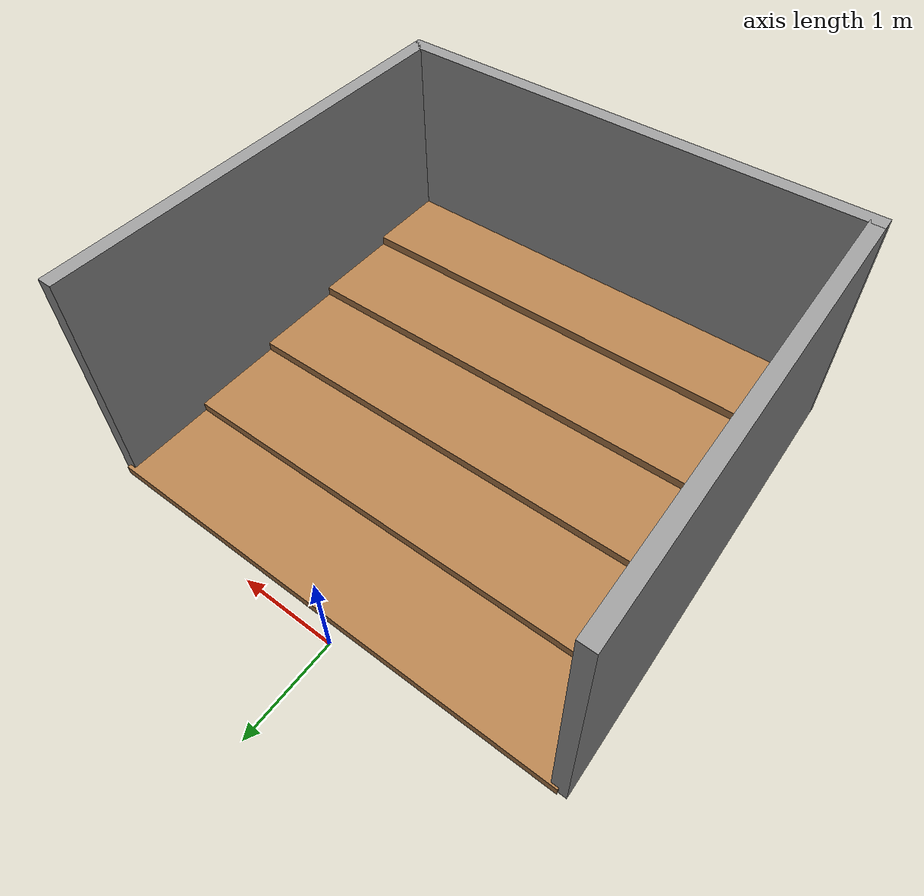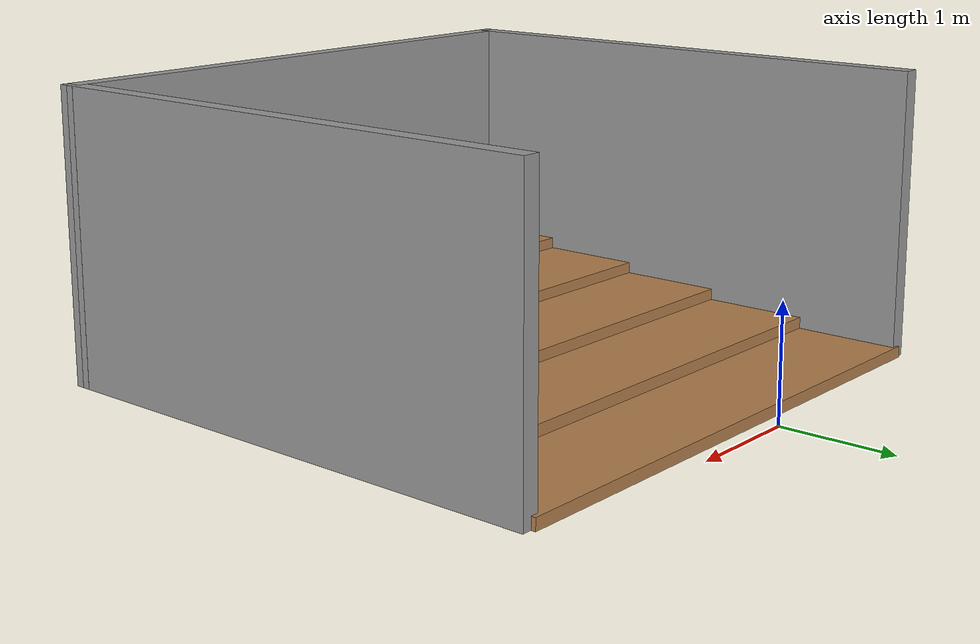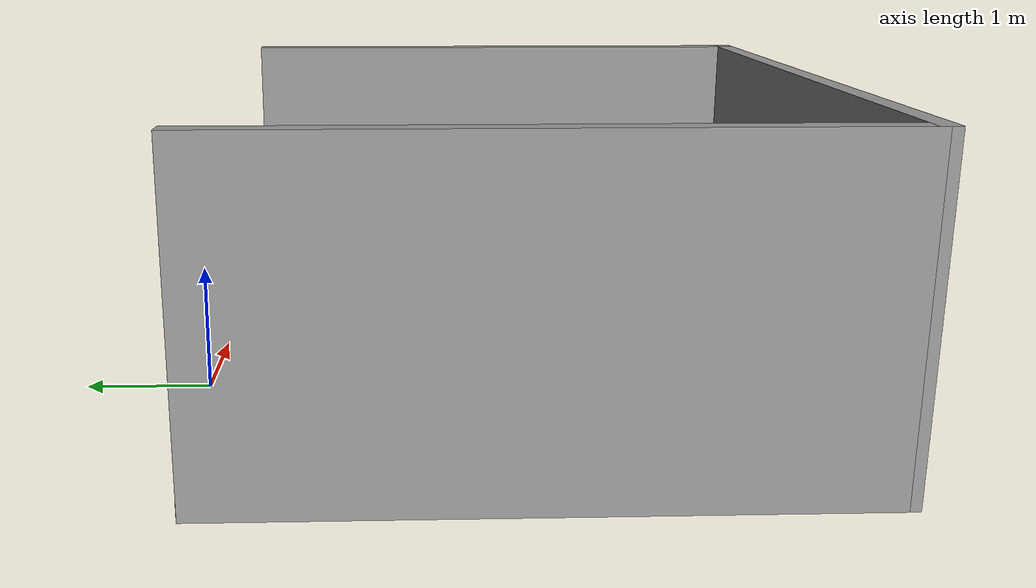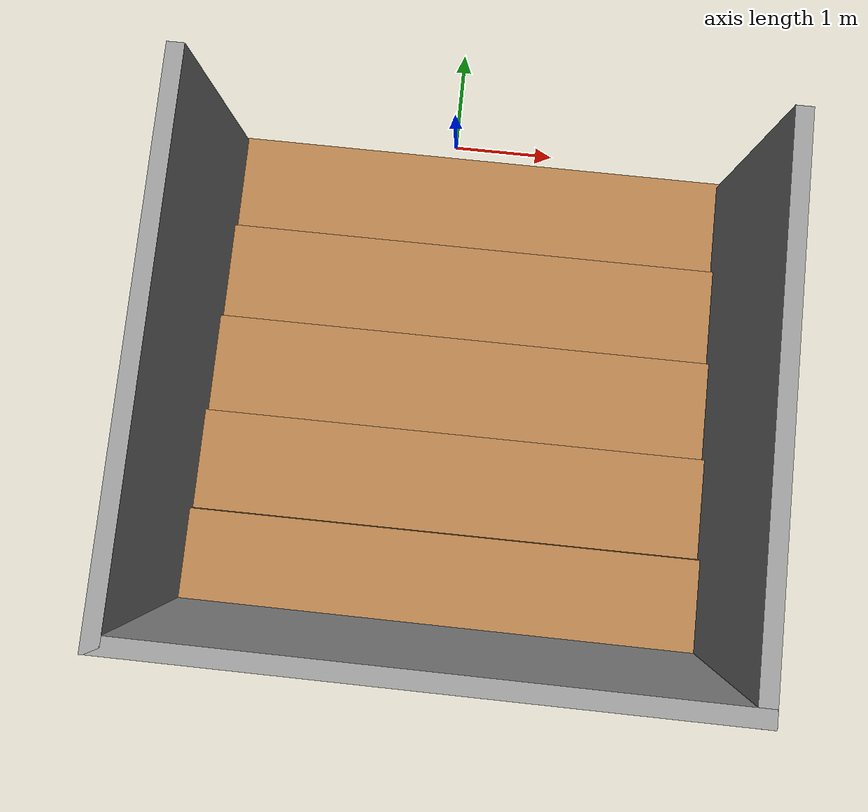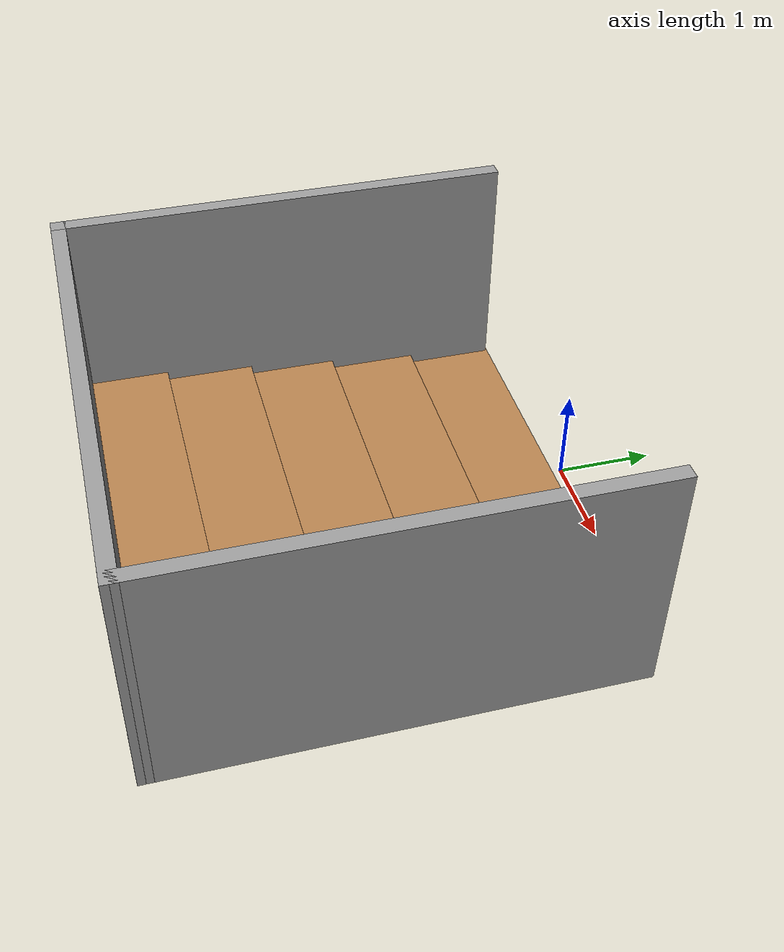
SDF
<?xml version='1.0'?>
<sdf version='1.7'>
  <model name='stairs'>
    <pose>0.288095 -2.46384 0 0 -0 0</pose>
    <link name='Stairs_4'>
      <visual name='Stairs_4_Visual_0'>
        <pose>-0.001731 1.85245 0.05 0 -0 0</pose>
        <geometry>
          <box>
            <size>5 0.945675 0.1</size>
          </box>
        </geometry>
        <material>
          <script>
            <uri>file://media/materials/scripts/gazebo.material</uri>
            <name>Gazebo/Wood</name>
          </script>
          <ambient>1 1 1 1</ambient>
        </material>
        <meta>
          <layer>0</layer>
        </meta>
      </visual>
      <collision name='Stairs_4_Collision_0'>
        <geometry>
          <box>
            <size>5 0.945675 0.1</size>
          </box>
        </geometry>
        <pose>-0.001731 1.85245 0.05 0 -0 0</pose>
      </collision>
      <visual name='Stairs_4_Visual_1'>
        <pose>-0.001731 0.906775 0.15 0 -0 0</pose>
        <geometry>
          <box>
            <size>5 0.945675 0.1</size>
          </box>
        </geometry>
        <material>
          <script>
            <uri>file://media/materials/scripts/gazebo.material</uri>
            <name>Gazebo/Wood</name>
          </script>
          <ambient>1 1 1 1</ambient>
        </material>
        <meta>
          <layer>0</layer>
        </meta>
      </visual>
      <collision name='Stairs_4_Collision_1'>
        <geometry>
          <box>
            <size>5 0.945675 0.1</size>
          </box>
        </geometry>
        <pose>-0.001731 0.906775 0.15 0 -0 0</pose>
      </collision>
      <visual name='Stairs_4_Visual_2'>
        <pose>-0.001731 -0.0389 0.25 0 -0 0</pose>
        <geometry>
          <box>
            <size>5 0.945675 0.1</size>
          </box>
        </geometry>
        <material>
          <script>
            <uri>file://media/materials/scripts/gazebo.material</uri>
            <name>Gazebo/Wood</name>
          </script>
          <ambient>1 1 1 1</ambient>
        </material>
        <meta>
          <layer>0</layer>
        </meta>
      </visual>
      <collision name='Stairs_4_Collision_2'>
        <geometry>
          <box>
            <size>5 0.945675 0.1</size>
          </box>
        </geometry>
        <pose>-0.001731 -0.0389 0.25 0 -0 0</pose>
      </collision>
      <visual name='Stairs_4_Visual_3'>
        <pose>-0.001731 -0.984575 0.35 0 -0 0</pose>
        <geometry>
          <box>
            <size>5 0.945675 0.1</size>
          </box>
        </geometry>
        <material>
          <script>
            <uri>file://media/materials/scripts/gazebo.material</uri>
            <name>Gazebo/Wood</name>
          </script>
          <ambient>1 1 1 1</ambient>
        </material>
        <meta>
          <layer>0</layer>
        </meta>
      </visual>
      <collision name='Stairs_4_Collision_3'>
        <geometry>
          <box>
            <size>5 0.945675 0.1</size>
          </box>
        </geometry>
        <pose>-0.001731 -0.984575 0.35 0 -0 0</pose>
      </collision>
      <visual name='Stairs_4_Visual_4'>
        <pose>-0.001731 -1.93025 0.45 0 -0 0</pose>
        <geometry>
          <box>
            <size>5 0.945675 0.1</size>
          </box>
        </geometry>
        <material>
          <script>
            <uri>file://media/materials/scripts/gazebo.material</uri>
            <name>Gazebo/Wood</name>
          </script>
          <ambient>1 1 1 1</ambient>
        </material>
        <meta>
          <layer>0</layer>
        </meta>
      </visual>
      <collision name='Stairs_4_Collision_4'>
        <geometry>
          <box>
            <size>5 0.945675 0.1</size>
          </box>
        </geometry>
        <pose>-0.001731 -1.93025 0.45 0 -0 0</pose>
      </collision>
    </link>
    <link name='Wall_3'>
      <collision name='Wall_3_Collision'>
        <geometry>
          <box>
            <size>4.75 0.15 2.5</size>
          </box>
        </geometry>
        <pose>0 0 1.25 0 -0 0</pose>
      </collision>
      <visual name='Wall_3_Visual'>
        <pose>0 0 1.25 0 -0 0</pose>
        <geometry>
          <box>
            <size>4.75 0.15 2.5</size>
          </box>
        </geometry>
        <material>
          <script>
            <uri>file://media/materials/scripts/gazebo.material</uri>
            <name>Gazebo/Grey</name>
          </script>
          <ambient>1 1 1 1</ambient>
        </material>
        <meta>
          <layer>0</layer>
        </meta>
      </visual>
      <pose>-2.50462 -0.068585 0 0 -0 1.5708</pose>
    </link>
    <link name='Wall_7'>
      <collision name='Wall_7_Collision'>
        <geometry>
          <box>
            <size>4.75 0.15 2.5</size>
          </box>
        </geometry>
        <pose>0 0 1.25 0 -0 0</pose>
      </collision>
      <visual name='Wall_7_Visual'>
        <pose>0 0 1.25 0 -0 0</pose>
        <geometry>
          <box>
            <size>4.75 0.15 2.5</size>
          </box>
        </geometry>
        <material>
          <script>
            <uri>file://media/materials/scripts/gazebo.material</uri>
            <name>Gazebo/Grey</name>
          </script>
          <ambient>1 1 1 1</ambient>
        </material>
        <meta>
          <layer>0</layer>
        </meta>
      </visual>
      <pose>2.50462 -0.088542 0 0 -0 1.5708</pose>
    </link>
    <link name='Wall_9'>
      <collision name='Wall_9_Collision'>
        <geometry>
          <box>
            <size>5.15928 0.15 2.5</size>
          </box>
        </geometry>
        <pose>0 0 1.25 0 -0 0</pose>
      </collision>
      <visual name='Wall_9_Visual'>
        <pose>0 0 1.25 0 -0 0</pose>
        <geometry>
          <box>
            <size>5.15928 0.15 2.5</size>
          </box>
        </geometry>
        <material>
          <script>
            <uri>file://media/materials/scripts/gazebo.material</uri>
            <name>Gazebo/Grey</name>
          </script>
          <ambient>1 1 1 1</ambient>
        </material>
        <meta>
          <layer>0</layer>
        </meta>
      </visual>
      <pose>-0 -2.37856 0 0 -0 -0.003984</pose>
    </link>
    <static>1</static>
  </model>
</sdf>
